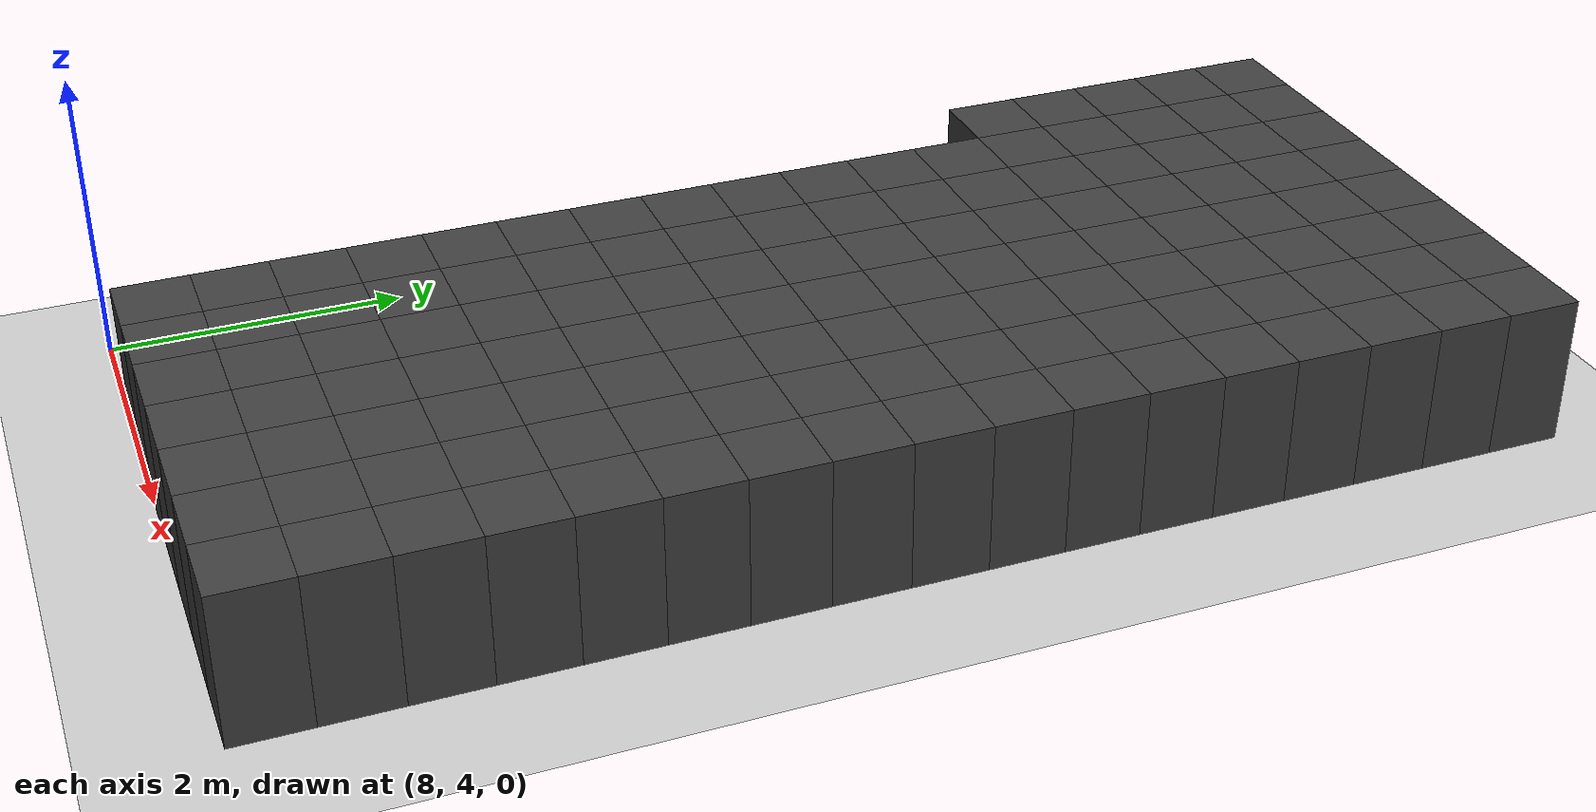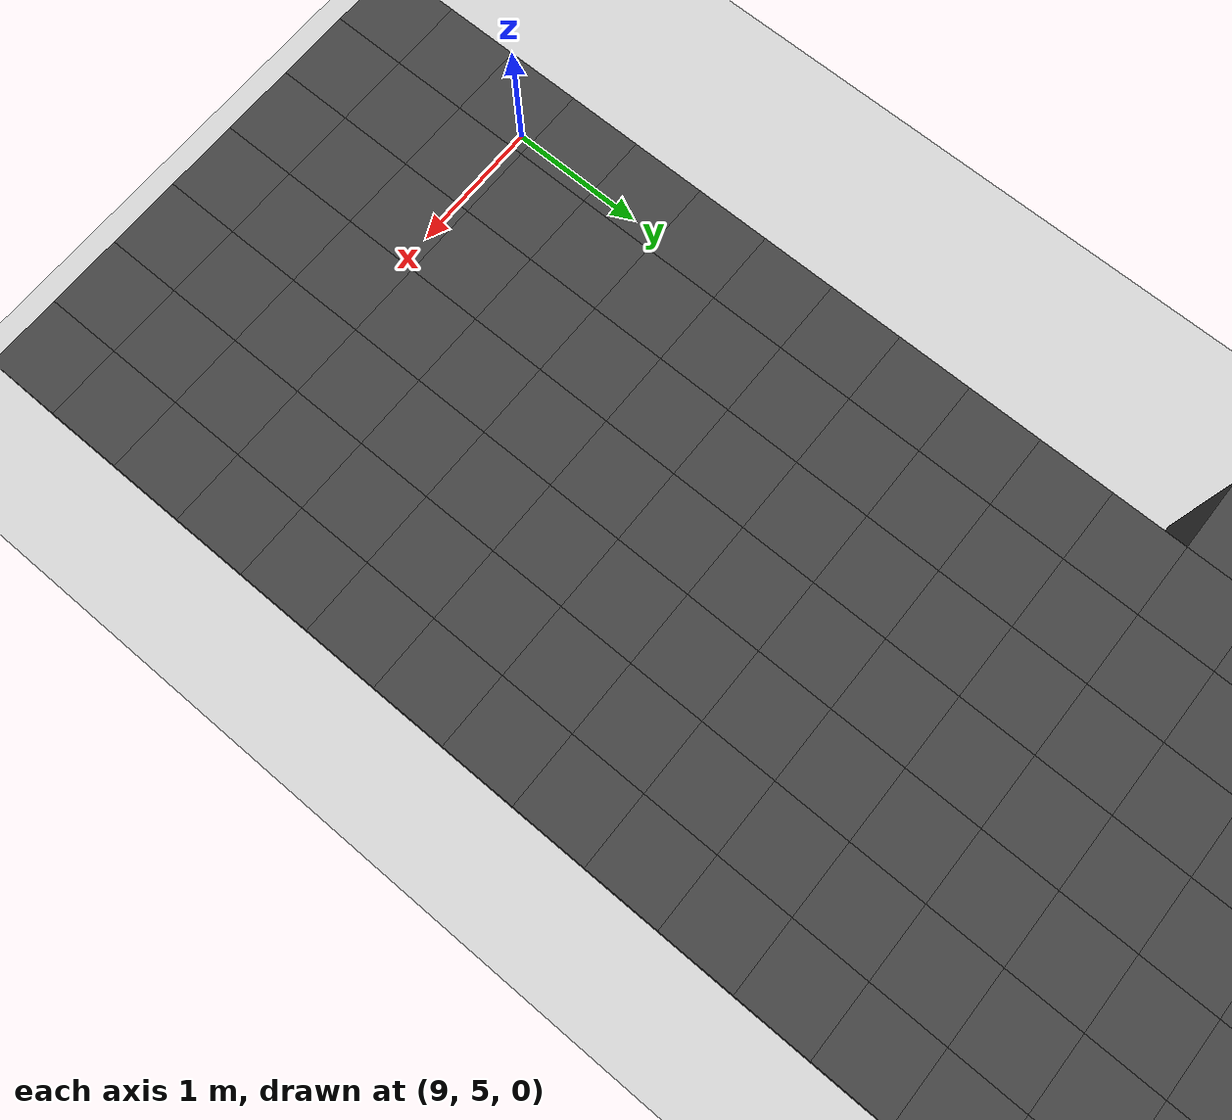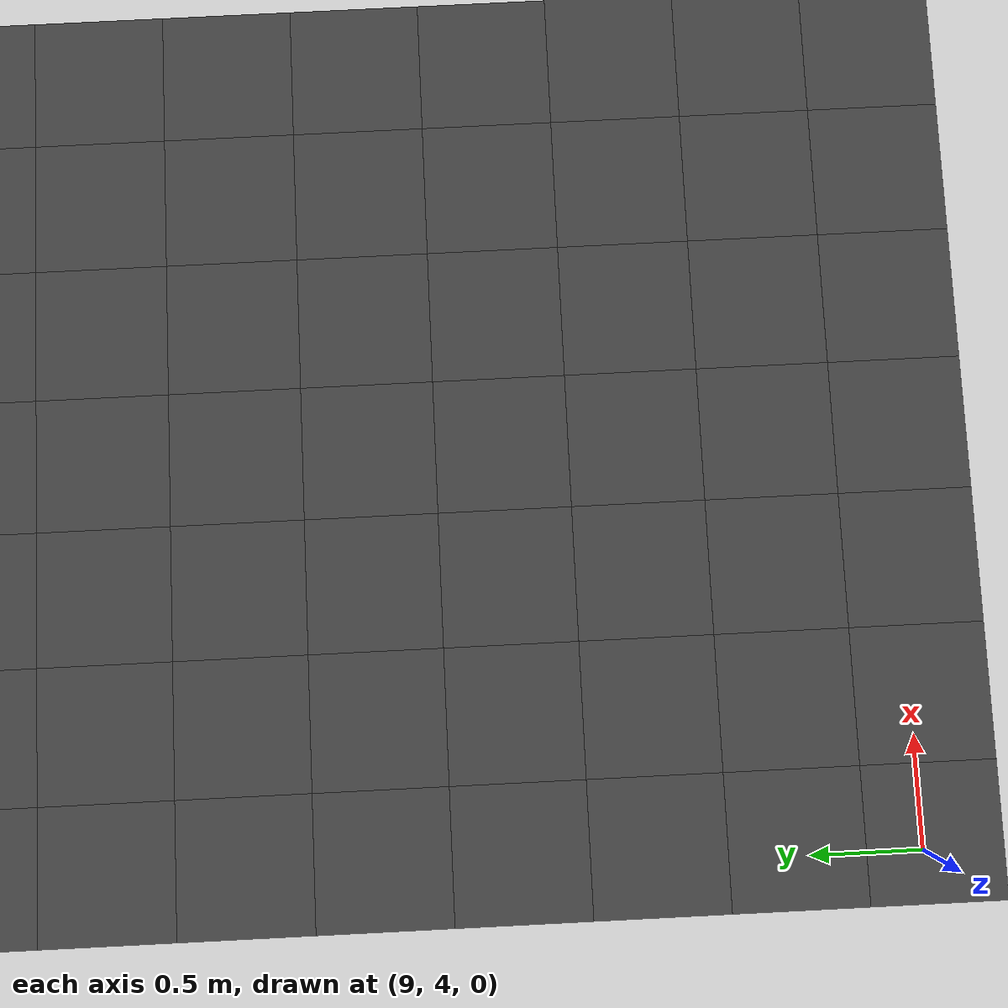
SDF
<sdf version="1.7">
 <world name="map_10726">
  <model name="ground_plane">
   <static>true</static>
   <link name="link">
    <collision name="collision">
     <geometry><plane><normal>0 0 1</normal><size>200 200</size></plane></geometry>
    </collision>
    <visual name="visual">
     <geometry><plane><normal>0 0 1</normal><size>200 200</size></plane></geometry>
     <material><ambient>0.8 0.8 0.8 1</ambient><diffuse>0.8 0.8 0.8 1</diffuse></material>
    </visual>
   </link>
  </model>
  <model name="maze_environment">
   <static>true</static>
   <link name="wall_42">
    <pose>8.750 12.250 0.500 0 0 0</pose>
    <collision name="col"><geometry><box><size>0.5 0.5 1.0</size></box></geometry></collision>
    <visual name="vis">
     <geometry><box><size>0.5 0.5 1.0</size></box></geometry>
     <material><ambient>0.15 0.15 0.15 1</ambient><diffuse>0.25 0.25 0.25 1</diffuse></material>
    </visual>
   </link>
   <link name="wall_43">
    <pose>9.250 12.250 0.500 0 0 0</pose>
    <collision name="col"><geometry><box><size>0.5 0.5 1.0</size></box></geometry></collision>
    <visual name="vis">
     <geometry><box><size>0.5 0.5 1.0</size></box></geometry>
     <material><ambient>0.15 0.15 0.15 1</ambient><diffuse>0.25 0.25 0.25 1</diffuse></material>
    </visual>
   </link>
   <link name="wall_44">
    <pose>9.750 12.250 0.500 0 0 0</pose>
    <collision name="col"><geometry><box><size>0.5 0.5 1.0</size></box></geometry></collision>
    <visual name="vis">
     <geometry><box><size>0.5 0.5 1.0</size></box></geometry>
     <material><ambient>0.15 0.15 0.15 1</ambient><diffuse>0.25 0.25 0.25 1</diffuse></material>
    </visual>
   </link>
   <link name="wall_45">
    <pose>10.250 12.250 0.500 0 0 0</pose>
    <collision name="col"><geometry><box><size>0.5 0.5 1.0</size></box></geometry></collision>
    <visual name="vis">
     <geometry><box><size>0.5 0.5 1.0</size></box></geometry>
     <material><ambient>0.15 0.15 0.15 1</ambient><diffuse>0.25 0.25 0.25 1</diffuse></material>
    </visual>
   </link>
   <link name="wall_46">
    <pose>10.750 12.250 0.500 0 0 0</pose>
    <collision name="col"><geometry><box><size>0.5 0.5 1.0</size></box></geometry></collision>
    <visual name="vis">
     <geometry><box><size>0.5 0.5 1.0</size></box></geometry>
     <material><ambient>0.15 0.15 0.15 1</ambient><diffuse>0.25 0.25 0.25 1</diffuse></material>
    </visual>
   </link>
   <link name="wall_47">
    <pose>11.250 12.250 0.500 0 0 0</pose>
    <collision name="col"><geometry><box><size>0.5 0.5 1.0</size></box></geometry></collision>
    <visual name="vis">
     <geometry><box><size>0.5 0.5 1.0</size></box></geometry>
     <material><ambient>0.15 0.15 0.15 1</ambient><diffuse>0.25 0.25 0.25 1</diffuse></material>
    </visual>
   </link>
   <link name="wall_48">
    <pose>11.750 12.250 0.500 0 0 0</pose>
    <collision name="col"><geometry><box><size>0.5 0.5 1.0</size></box></geometry></collision>
    <visual name="vis">
     <geometry><box><size>0.5 0.5 1.0</size></box></geometry>
     <material><ambient>0.15 0.15 0.15 1</ambient><diffuse>0.25 0.25 0.25 1</diffuse></material>
    </visual>
   </link>
   <link name="wall_49">
    <pose>12.250 12.250 0.500 0 0 0</pose>
    <collision name="col"><geometry><box><size>0.5 0.5 1.0</size></box></geometry></collision>
    <visual name="vis">
     <geometry><box><size>0.5 0.5 1.0</size></box></geometry>
     <material><ambient>0.15 0.15 0.15 1</ambient><diffuse>0.25 0.25 0.25 1</diffuse></material>
    </visual>
   </link>
   <link name="wall_89">
    <pose>8.750 11.750 0.500 0 0 0</pose>
    <collision name="col"><geometry><box><size>0.5 0.5 1.0</size></box></geometry></collision>
    <visual name="vis">
     <geometry><box><size>0.5 0.5 1.0</size></box></geometry>
     <material><ambient>0.15 0.15 0.15 1</ambient><diffuse>0.25 0.25 0.25 1</diffuse></material>
    </visual>
   </link>
   <link name="wall_90">
    <pose>9.250 11.750 0.500 0 0 0</pose>
    <collision name="col"><geometry><box><size>0.5 0.5 1.0</size></box></geometry></collision>
    <visual name="vis">
     <geometry><box><size>0.5 0.5 1.0</size></box></geometry>
     <material><ambient>0.15 0.15 0.15 1</ambient><diffuse>0.25 0.25 0.25 1</diffuse></material>
    </visual>
   </link>
   <link name="wall_91">
    <pose>9.750 11.750 0.500 0 0 0</pose>
    <collision name="col"><geometry><box><size>0.5 0.5 1.0</size></box></geometry></collision>
    <visual name="vis">
     <geometry><box><size>0.5 0.5 1.0</size></box></geometry>
     <material><ambient>0.15 0.15 0.15 1</ambient><diffuse>0.25 0.25 0.25 1</diffuse></material>
    </visual>
   </link>
   <link name="wall_92">
    <pose>10.250 11.750 0.500 0 0 0</pose>
    <collision name="col"><geometry><box><size>0.5 0.5 1.0</size></box></geometry></collision>
    <visual name="vis">
     <geometry><box><size>0.5 0.5 1.0</size></box></geometry>
     <material><ambient>0.15 0.15 0.15 1</ambient><diffuse>0.25 0.25 0.25 1</diffuse></material>
    </visual>
   </link>
   <link name="wall_93">
    <pose>10.750 11.750 0.500 0 0 0</pose>
    <collision name="col"><geometry><box><size>0.5 0.5 1.0</size></box></geometry></collision>
    <visual name="vis">
     <geometry><box><size>0.5 0.5 1.0</size></box></geometry>
     <material><ambient>0.15 0.15 0.15 1</ambient><diffuse>0.25 0.25 0.25 1</diffuse></material>
    </visual>
   </link>
   <link name="wall_94">
    <pose>11.250 11.750 0.500 0 0 0</pose>
    <collision name="col"><geometry><box><size>0.5 0.5 1.0</size></box></geometry></collision>
    <visual name="vis">
     <geometry><box><size>0.5 0.5 1.0</size></box></geometry>
     <material><ambient>0.15 0.15 0.15 1</ambient><diffuse>0.25 0.25 0.25 1</diffuse></material>
    </visual>
   </link>
   <link name="wall_95">
    <pose>11.750 11.750 0.500 0 0 0</pose>
    <collision name="col"><geometry><box><size>0.5 0.5 1.0</size></box></geometry></collision>
    <visual name="vis">
     <geometry><box><size>0.5 0.5 1.0</size></box></geometry>
     <material><ambient>0.15 0.15 0.15 1</ambient><diffuse>0.25 0.25 0.25 1</diffuse></material>
    </visual>
   </link>
   <link name="wall_96">
    <pose>12.250 11.750 0.500 0 0 0</pose>
    <collision name="col"><geometry><box><size>0.5 0.5 1.0</size></box></geometry></collision>
    <visual name="vis">
     <geometry><box><size>0.5 0.5 1.0</size></box></geometry>
     <material><ambient>0.15 0.15 0.15 1</ambient><diffuse>0.25 0.25 0.25 1</diffuse></material>
    </visual>
   </link>
   <link name="wall_136">
    <pose>8.750 11.250 0.500 0 0 0</pose>
    <collision name="col"><geometry><box><size>0.5 0.5 1.0</size></box></geometry></collision>
    <visual name="vis">
     <geometry><box><size>0.5 0.5 1.0</size></box></geometry>
     <material><ambient>0.15 0.15 0.15 1</ambient><diffuse>0.25 0.25 0.25 1</diffuse></material>
    </visual>
   </link>
   <link name="wall_137">
    <pose>9.250 11.250 0.500 0 0 0</pose>
    <collision name="col"><geometry><box><size>0.5 0.5 1.0</size></box></geometry></collision>
    <visual name="vis">
     <geometry><box><size>0.5 0.5 1.0</size></box></geometry>
     <material><ambient>0.15 0.15 0.15 1</ambient><diffuse>0.25 0.25 0.25 1</diffuse></material>
    </visual>
   </link>
   <link name="wall_138">
    <pose>9.750 11.250 0.500 0 0 0</pose>
    <collision name="col"><geometry><box><size>0.5 0.5 1.0</size></box></geometry></collision>
    <visual name="vis">
     <geometry><box><size>0.5 0.5 1.0</size></box></geometry>
     <material><ambient>0.15 0.15 0.15 1</ambient><diffuse>0.25 0.25 0.25 1</diffuse></material>
    </visual>
   </link>
   <link name="wall_139">
    <pose>10.250 11.250 0.500 0 0 0</pose>
    <collision name="col"><geometry><box><size>0.5 0.5 1.0</size></box></geometry></collision>
    <visual name="vis">
     <geometry><box><size>0.5 0.5 1.0</size></box></geometry>
     <material><ambient>0.15 0.15 0.15 1</ambient><diffuse>0.25 0.25 0.25 1</diffuse></material>
    </visual>
   </link>
   <link name="wall_140">
    <pose>10.750 11.250 0.500 0 0 0</pose>
    <collision name="col"><geometry><box><size>0.5 0.5 1.0</size></box></geometry></collision>
    <visual name="vis">
     <geometry><box><size>0.5 0.5 1.0</size></box></geometry>
     <material><ambient>0.15 0.15 0.15 1</ambient><diffuse>0.25 0.25 0.25 1</diffuse></material>
    </visual>
   </link>
   <link name="wall_141">
    <pose>11.250 11.250 0.500 0 0 0</pose>
    <collision name="col"><geometry><box><size>0.5 0.5 1.0</size></box></geometry></collision>
    <visual name="vis">
     <geometry><box><size>0.5 0.5 1.0</size></box></geometry>
     <material><ambient>0.15 0.15 0.15 1</ambient><diffuse>0.25 0.25 0.25 1</diffuse></material>
    </visual>
   </link>
   <link name="wall_142">
    <pose>11.750 11.250 0.500 0 0 0</pose>
    <collision name="col"><geometry><box><size>0.5 0.5 1.0</size></box></geometry></collision>
    <visual name="vis">
     <geometry><box><size>0.5 0.5 1.0</size></box></geometry>
     <material><ambient>0.15 0.15 0.15 1</ambient><diffuse>0.25 0.25 0.25 1</diffuse></material>
    </visual>
   </link>
   <link name="wall_143">
    <pose>12.250 11.250 0.500 0 0 0</pose>
    <collision name="col"><geometry><box><size>0.5 0.5 1.0</size></box></geometry></collision>
    <visual name="vis">
     <geometry><box><size>0.5 0.5 1.0</size></box></geometry>
     <material><ambient>0.15 0.15 0.15 1</ambient><diffuse>0.25 0.25 0.25 1</diffuse></material>
    </visual>
   </link>
   <link name="wall_183">
    <pose>8.750 10.750 0.500 0 0 0</pose>
    <collision name="col"><geometry><box><size>0.5 0.5 1.0</size></box></geometry></collision>
    <visual name="vis">
     <geometry><box><size>0.5 0.5 1.0</size></box></geometry>
     <material><ambient>0.15 0.15 0.15 1</ambient><diffuse>0.25 0.25 0.25 1</diffuse></material>
    </visual>
   </link>
   <link name="wall_184">
    <pose>9.250 10.750 0.500 0 0 0</pose>
    <collision name="col"><geometry><box><size>0.5 0.5 1.0</size></box></geometry></collision>
    <visual name="vis">
     <geometry><box><size>0.5 0.5 1.0</size></box></geometry>
     <material><ambient>0.15 0.15 0.15 1</ambient><diffuse>0.25 0.25 0.25 1</diffuse></material>
    </visual>
   </link>
   <link name="wall_185">
    <pose>9.750 10.750 0.500 0 0 0</pose>
    <collision name="col"><geometry><box><size>0.5 0.5 1.0</size></box></geometry></collision>
    <visual name="vis">
     <geometry><box><size>0.5 0.5 1.0</size></box></geometry>
     <material><ambient>0.15 0.15 0.15 1</ambient><diffuse>0.25 0.25 0.25 1</diffuse></material>
    </visual>
   </link>
   <link name="wall_186">
    <pose>10.250 10.750 0.500 0 0 0</pose>
    <collision name="col"><geometry><box><size>0.5 0.5 1.0</size></box></geometry></collision>
    <visual name="vis">
     <geometry><box><size>0.5 0.5 1.0</size></box></geometry>
     <material><ambient>0.15 0.15 0.15 1</ambient><diffuse>0.25 0.25 0.25 1</diffuse></material>
    </visual>
   </link>
   <link name="wall_187">
    <pose>10.750 10.750 0.500 0 0 0</pose>
    <collision name="col"><geometry><box><size>0.5 0.5 1.0</size></box></geometry></collision>
    <visual name="vis">
     <geometry><box><size>0.5 0.5 1.0</size></box></geometry>
     <material><ambient>0.15 0.15 0.15 1</ambient><diffuse>0.25 0.25 0.25 1</diffuse></material>
    </visual>
   </link>
   <link name="wall_188">
    <pose>11.250 10.750 0.500 0 0 0</pose>
    <collision name="col"><geometry><box><size>0.5 0.5 1.0</size></box></geometry></collision>
    <visual name="vis">
     <geometry><box><size>0.5 0.5 1.0</size></box></geometry>
     <material><ambient>0.15 0.15 0.15 1</ambient><diffuse>0.25 0.25 0.25 1</diffuse></material>
    </visual>
   </link>
   <link name="wall_189">
    <pose>11.750 10.750 0.500 0 0 0</pose>
    <collision name="col"><geometry><box><size>0.5 0.5 1.0</size></box></geometry></collision>
    <visual name="vis">
     <geometry><box><size>0.5 0.5 1.0</size></box></geometry>
     <material><ambient>0.15 0.15 0.15 1</ambient><diffuse>0.25 0.25 0.25 1</diffuse></material>
    </visual>
   </link>
   <link name="wall_190">
    <pose>12.250 10.750 0.500 0 0 0</pose>
    <collision name="col"><geometry><box><size>0.5 0.5 1.0</size></box></geometry></collision>
    <visual name="vis">
     <geometry><box><size>0.5 0.5 1.0</size></box></geometry>
     <material><ambient>0.15 0.15 0.15 1</ambient><diffuse>0.25 0.25 0.25 1</diffuse></material>
    </visual>
   </link>
   <link name="wall_232">
    <pose>8.750 10.250 0.500 0 0 0</pose>
    <collision name="col"><geometry><box><size>0.5 0.5 1.0</size></box></geometry></collision>
    <visual name="vis">
     <geometry><box><size>0.5 0.5 1.0</size></box></geometry>
     <material><ambient>0.15 0.15 0.15 1</ambient><diffuse>0.25 0.25 0.25 1</diffuse></material>
    </visual>
   </link>
   <link name="wall_233">
    <pose>9.250 10.250 0.500 0 0 0</pose>
    <collision name="col"><geometry><box><size>0.5 0.5 1.0</size></box></geometry></collision>
    <visual name="vis">
     <geometry><box><size>0.5 0.5 1.0</size></box></geometry>
     <material><ambient>0.15 0.15 0.15 1</ambient><diffuse>0.25 0.25 0.25 1</diffuse></material>
    </visual>
   </link>
   <link name="wall_234">
    <pose>9.750 10.250 0.500 0 0 0</pose>
    <collision name="col"><geometry><box><size>0.5 0.5 1.0</size></box></geometry></collision>
    <visual name="vis">
     <geometry><box><size>0.5 0.5 1.0</size></box></geometry>
     <material><ambient>0.15 0.15 0.15 1</ambient><diffuse>0.25 0.25 0.25 1</diffuse></material>
    </visual>
   </link>
   <link name="wall_235">
    <pose>10.250 10.250 0.500 0 0 0</pose>
    <collision name="col"><geometry><box><size>0.5 0.5 1.0</size></box></geometry></collision>
    <visual name="vis">
     <geometry><box><size>0.5 0.5 1.0</size></box></geometry>
     <material><ambient>0.15 0.15 0.15 1</ambient><diffuse>0.25 0.25 0.25 1</diffuse></material>
    </visual>
   </link>
   <link name="wall_236">
    <pose>10.750 10.250 0.500 0 0 0</pose>
    <collision name="col"><geometry><box><size>0.5 0.5 1.0</size></box></geometry></collision>
    <visual name="vis">
     <geometry><box><size>0.5 0.5 1.0</size></box></geometry>
     <material><ambient>0.15 0.15 0.15 1</ambient><diffuse>0.25 0.25 0.25 1</diffuse></material>
    </visual>
   </link>
   <link name="wall_237">
    <pose>11.250 10.250 0.500 0 0 0</pose>
    <collision name="col"><geometry><box><size>0.5 0.5 1.0</size></box></geometry></collision>
    <visual name="vis">
     <geometry><box><size>0.5 0.5 1.0</size></box></geometry>
     <material><ambient>0.15 0.15 0.15 1</ambient><diffuse>0.25 0.25 0.25 1</diffuse></material>
    </visual>
   </link>
   <link name="wall_238">
    <pose>11.750 10.250 0.500 0 0 0</pose>
    <collision name="col"><geometry><box><size>0.5 0.5 1.0</size></box></geometry></collision>
    <visual name="vis">
     <geometry><box><size>0.5 0.5 1.0</size></box></geometry>
     <material><ambient>0.15 0.15 0.15 1</ambient><diffuse>0.25 0.25 0.25 1</diffuse></material>
    </visual>
   </link>
   <link name="wall_239">
    <pose>12.250 10.250 0.500 0 0 0</pose>
    <collision name="col"><geometry><box><size>0.5 0.5 1.0</size></box></geometry></collision>
    <visual name="vis">
     <geometry><box><size>0.5 0.5 1.0</size></box></geometry>
     <material><ambient>0.15 0.15 0.15 1</ambient><diffuse>0.25 0.25 0.25 1</diffuse></material>
    </visual>
   </link>
   <link name="wall_282">
    <pose>9.250 9.750 0.500 0 0 0</pose>
    <collision name="col"><geometry><box><size>0.5 0.5 1.0</size></box></geometry></collision>
    <visual name="vis">
     <geometry><box><size>0.5 0.5 1.0</size></box></geometry>
     <material><ambient>0.15 0.15 0.15 1</ambient><diffuse>0.25 0.25 0.25 1</diffuse></material>
    </visual>
   </link>
   <link name="wall_283">
    <pose>9.750 9.750 0.500 0 0 0</pose>
    <collision name="col"><geometry><box><size>0.5 0.5 1.0</size></box></geometry></collision>
    <visual name="vis">
     <geometry><box><size>0.5 0.5 1.0</size></box></geometry>
     <material><ambient>0.15 0.15 0.15 1</ambient><diffuse>0.25 0.25 0.25 1</diffuse></material>
    </visual>
   </link>
   <link name="wall_284">
    <pose>10.250 9.750 0.500 0 0 0</pose>
    <collision name="col"><geometry><box><size>0.5 0.5 1.0</size></box></geometry></collision>
    <visual name="vis">
     <geometry><box><size>0.5 0.5 1.0</size></box></geometry>
     <material><ambient>0.15 0.15 0.15 1</ambient><diffuse>0.25 0.25 0.25 1</diffuse></material>
    </visual>
   </link>
   <link name="wall_285">
    <pose>10.750 9.750 0.500 0 0 0</pose>
    <collision name="col"><geometry><box><size>0.5 0.5 1.0</size></box></geometry></collision>
    <visual name="vis">
     <geometry><box><size>0.5 0.5 1.0</size></box></geometry>
     <material><ambient>0.15 0.15 0.15 1</ambient><diffuse>0.25 0.25 0.25 1</diffuse></material>
    </visual>
   </link>
   <link name="wall_286">
    <pose>11.250 9.750 0.500 0 0 0</pose>
    <collision name="col"><geometry><box><size>0.5 0.5 1.0</size></box></geometry></collision>
    <visual name="vis">
     <geometry><box><size>0.5 0.5 1.0</size></box></geometry>
     <material><ambient>0.15 0.15 0.15 1</ambient><diffuse>0.25 0.25 0.25 1</diffuse></material>
    </visual>
   </link>
   <link name="wall_287">
    <pose>11.750 9.750 0.500 0 0 0</pose>
    <collision name="col"><geometry><box><size>0.5 0.5 1.0</size></box></geometry></collision>
    <visual name="vis">
     <geometry><box><size>0.5 0.5 1.0</size></box></geometry>
     <material><ambient>0.15 0.15 0.15 1</ambient><diffuse>0.25 0.25 0.25 1</diffuse></material>
    </visual>
   </link>
   <link name="wall_288">
    <pose>12.250 9.750 0.500 0 0 0</pose>
    <collision name="col"><geometry><box><size>0.5 0.5 1.0</size></box></geometry></collision>
    <visual name="vis">
     <geometry><box><size>0.5 0.5 1.0</size></box></geometry>
     <material><ambient>0.15 0.15 0.15 1</ambient><diffuse>0.25 0.25 0.25 1</diffuse></material>
    </visual>
   </link>
   <link name="wall_331">
    <pose>9.250 9.250 0.500 0 0 0</pose>
    <collision name="col"><geometry><box><size>0.5 0.5 1.0</size></box></geometry></collision>
    <visual name="vis">
     <geometry><box><size>0.5 0.5 1.0</size></box></geometry>
     <material><ambient>0.15 0.15 0.15 1</ambient><diffuse>0.25 0.25 0.25 1</diffuse></material>
    </visual>
   </link>
   <link name="wall_332">
    <pose>9.750 9.250 0.500 0 0 0</pose>
    <collision name="col"><geometry><box><size>0.5 0.5 1.0</size></box></geometry></collision>
    <visual name="vis">
     <geometry><box><size>0.5 0.5 1.0</size></box></geometry>
     <material><ambient>0.15 0.15 0.15 1</ambient><diffuse>0.25 0.25 0.25 1</diffuse></material>
    </visual>
   </link>
   <link name="wall_333">
    <pose>10.250 9.250 0.500 0 0 0</pose>
    <collision name="col"><geometry><box><size>0.5 0.5 1.0</size></box></geometry></collision>
    <visual name="vis">
     <geometry><box><size>0.5 0.5 1.0</size></box></geometry>
     <material><ambient>0.15 0.15 0.15 1</ambient><diffuse>0.25 0.25 0.25 1</diffuse></material>
    </visual>
   </link>
   <link name="wall_334">
    <pose>10.750 9.250 0.500 0 0 0</pose>
    <collision name="col"><geometry><box><size>0.5 0.5 1.0</size></box></geometry></collision>
    <visual name="vis">
     <geometry><box><size>0.5 0.5 1.0</size></box></geometry>
     <material><ambient>0.15 0.15 0.15 1</ambient><diffuse>0.25 0.25 0.25 1</diffuse></material>
    </visual>
   </link>
   <link name="wall_335">
    <pose>11.250 9.250 0.500 0 0 0</pose>
    <collision name="col"><geometry><box><size>0.5 0.5 1.0</size></box></geometry></collision>
    <visual name="vis">
     <geometry><box><size>0.5 0.5 1.0</size></box></geometry>
     <material><ambient>0.15 0.15 0.15 1</ambient><diffuse>0.25 0.25 0.25 1</diffuse></material>
    </visual>
   </link>
   <link name="wall_336">
    <pose>11.750 9.250 0.500 0 0 0</pose>
    <collision name="col"><geometry><box><size>0.5 0.5 1.0</size></box></geometry></collision>
    <visual name="vis">
     <geometry><box><size>0.5 0.5 1.0</size></box></geometry>
     <material><ambient>0.15 0.15 0.15 1</ambient><diffuse>0.25 0.25 0.25 1</diffuse></material>
    </visual>
   </link>
   <link name="wall_337">
    <pose>12.250 9.250 0.500 0 0 0</pose>
    <collision name="col"><geometry><box><size>0.5 0.5 1.0</size></box></geometry></collision>
    <visual name="vis">
     <geometry><box><size>0.5 0.5 1.0</size></box></geometry>
     <material><ambient>0.15 0.15 0.15 1</ambient><diffuse>0.25 0.25 0.25 1</diffuse></material>
    </visual>
   </link>
   <link name="wall_372">
    <pose>9.250 8.750 0.500 0 0 0</pose>
    <collision name="col"><geometry><box><size>0.5 0.5 1.0</size></box></geometry></collision>
    <visual name="vis">
     <geometry><box><size>0.5 0.5 1.0</size></box></geometry>
     <material><ambient>0.15 0.15 0.15 1</ambient><diffuse>0.25 0.25 0.25 1</diffuse></material>
    </visual>
   </link>
   <link name="wall_373">
    <pose>9.750 8.750 0.500 0 0 0</pose>
    <collision name="col"><geometry><box><size>0.5 0.5 1.0</size></box></geometry></collision>
    <visual name="vis">
     <geometry><box><size>0.5 0.5 1.0</size></box></geometry>
     <material><ambient>0.15 0.15 0.15 1</ambient><diffuse>0.25 0.25 0.25 1</diffuse></material>
    </visual>
   </link>
   <link name="wall_374">
    <pose>10.250 8.750 0.500 0 0 0</pose>
    <collision name="col"><geometry><box><size>0.5 0.5 1.0</size></box></geometry></collision>
    <visual name="vis">
     <geometry><box><size>0.5 0.5 1.0</size></box></geometry>
     <material><ambient>0.15 0.15 0.15 1</ambient><diffuse>0.25 0.25 0.25 1</diffuse></material>
    </visual>
   </link>
   <link name="wall_375">
    <pose>10.750 8.750 0.500 0 0 0</pose>
    <collision name="col"><geometry><box><size>0.5 0.5 1.0</size></box></geometry></collision>
    <visual name="vis">
     <geometry><box><size>0.5 0.5 1.0</size></box></geometry>
     <material><ambient>0.15 0.15 0.15 1</ambient><diffuse>0.25 0.25 0.25 1</diffuse></material>
    </visual>
   </link>
   <link name="wall_376">
    <pose>11.250 8.750 0.500 0 0 0</pose>
    <collision name="col"><geometry><box><size>0.5 0.5 1.0</size></box></geometry></collision>
    <visual name="vis">
     <geometry><box><size>0.5 0.5 1.0</size></box></geometry>
     <material><ambient>0.15 0.15 0.15 1</ambient><diffuse>0.25 0.25 0.25 1</diffuse></material>
    </visual>
   </link>
   <link name="wall_377">
    <pose>11.750 8.750 0.500 0 0 0</pose>
    <collision name="col"><geometry><box><size>0.5 0.5 1.0</size></box></geometry></collision>
    <visual name="vis">
     <geometry><box><size>0.5 0.5 1.0</size></box></geometry>
     <material><ambient>0.15 0.15 0.15 1</ambient><diffuse>0.25 0.25 0.25 1</diffuse></material>
    </visual>
   </link>
   <link name="wall_378">
    <pose>12.250 8.750 0.500 0 0 0</pose>
    <collision name="col"><geometry><box><size>0.5 0.5 1.0</size></box></geometry></collision>
    <visual name="vis">
     <geometry><box><size>0.5 0.5 1.0</size></box></geometry>
     <material><ambient>0.15 0.15 0.15 1</ambient><diffuse>0.25 0.25 0.25 1</diffuse></material>
    </visual>
   </link>
   <link name="wall_413">
    <pose>9.250 8.250 0.500 0 0 0</pose>
    <collision name="col"><geometry><box><size>0.5 0.5 1.0</size></box></geometry></collision>
    <visual name="vis">
     <geometry><box><size>0.5 0.5 1.0</size></box></geometry>
     <material><ambient>0.15 0.15 0.15 1</ambient><diffuse>0.25 0.25 0.25 1</diffuse></material>
    </visual>
   </link>
   <link name="wall_414">
    <pose>9.750 8.250 0.500 0 0 0</pose>
    <collision name="col"><geometry><box><size>0.5 0.5 1.0</size></box></geometry></collision>
    <visual name="vis">
     <geometry><box><size>0.5 0.5 1.0</size></box></geometry>
     <material><ambient>0.15 0.15 0.15 1</ambient><diffuse>0.25 0.25 0.25 1</diffuse></material>
    </visual>
   </link>
   <link name="wall_415">
    <pose>10.250 8.250 0.500 0 0 0</pose>
    <collision name="col"><geometry><box><size>0.5 0.5 1.0</size></box></geometry></collision>
    <visual name="vis">
     <geometry><box><size>0.5 0.5 1.0</size></box></geometry>
     <material><ambient>0.15 0.15 0.15 1</ambient><diffuse>0.25 0.25 0.25 1</diffuse></material>
    </visual>
   </link>
   <link name="wall_416">
    <pose>10.750 8.250 0.500 0 0 0</pose>
    <collision name="col"><geometry><box><size>0.5 0.5 1.0</size></box></geometry></collision>
    <visual name="vis">
     <geometry><box><size>0.5 0.5 1.0</size></box></geometry>
     <material><ambient>0.15 0.15 0.15 1</ambient><diffuse>0.25 0.25 0.25 1</diffuse></material>
    </visual>
   </link>
   <link name="wall_417">
    <pose>11.250 8.250 0.500 0 0 0</pose>
    <collision name="col"><geometry><box><size>0.5 0.5 1.0</size></box></geometry></collision>
    <visual name="vis">
     <geometry><box><size>0.5 0.5 1.0</size></box></geometry>
     <material><ambient>0.15 0.15 0.15 1</ambient><diffuse>0.25 0.25 0.25 1</diffuse></material>
    </visual>
   </link>
   <link name="wall_418">
    <pose>11.750 8.250 0.500 0 0 0</pose>
    <collision name="col"><geometry><box><size>0.5 0.5 1.0</size></box></geometry></collision>
    <visual name="vis">
     <geometry><box><size>0.5 0.5 1.0</size></box></geometry>
     <material><ambient>0.15 0.15 0.15 1</ambient><diffuse>0.25 0.25 0.25 1</diffuse></material>
    </visual>
   </link>
   <link name="wall_419">
    <pose>12.250 8.250 0.500 0 0 0</pose>
    <collision name="col"><geometry><box><size>0.5 0.5 1.0</size></box></geometry></collision>
    <visual name="vis">
     <geometry><box><size>0.5 0.5 1.0</size></box></geometry>
     <material><ambient>0.15 0.15 0.15 1</ambient><diffuse>0.25 0.25 0.25 1</diffuse></material>
    </visual>
   </link>
   <link name="wall_454">
    <pose>9.250 7.750 0.500 0 0 0</pose>
    <collision name="col"><geometry><box><size>0.5 0.5 1.0</size></box></geometry></collision>
    <visual name="vis">
     <geometry><box><size>0.5 0.5 1.0</size></box></geometry>
     <material><ambient>0.15 0.15 0.15 1</ambient><diffuse>0.25 0.25 0.25 1</diffuse></material>
    </visual>
   </link>
   <link name="wall_455">
    <pose>9.750 7.750 0.500 0 0 0</pose>
    <collision name="col"><geometry><box><size>0.5 0.5 1.0</size></box></geometry></collision>
    <visual name="vis">
     <geometry><box><size>0.5 0.5 1.0</size></box></geometry>
     <material><ambient>0.15 0.15 0.15 1</ambient><diffuse>0.25 0.25 0.25 1</diffuse></material>
    </visual>
   </link>
   <link name="wall_456">
    <pose>10.250 7.750 0.500 0 0 0</pose>
    <collision name="col"><geometry><box><size>0.5 0.5 1.0</size></box></geometry></collision>
    <visual name="vis">
     <geometry><box><size>0.5 0.5 1.0</size></box></geometry>
     <material><ambient>0.15 0.15 0.15 1</ambient><diffuse>0.25 0.25 0.25 1</diffuse></material>
    </visual>
   </link>
   <link name="wall_457">
    <pose>10.750 7.750 0.500 0 0 0</pose>
    <collision name="col"><geometry><box><size>0.5 0.5 1.0</size></box></geometry></collision>
    <visual name="vis">
     <geometry><box><size>0.5 0.5 1.0</size></box></geometry>
     <material><ambient>0.15 0.15 0.15 1</ambient><diffuse>0.25 0.25 0.25 1</diffuse></material>
    </visual>
   </link>
   <link name="wall_458">
    <pose>11.250 7.750 0.500 0 0 0</pose>
    <collision name="col"><geometry><box><size>0.5 0.5 1.0</size></box></geometry></collision>
    <visual name="vis">
     <geometry><box><size>0.5 0.5 1.0</size></box></geometry>
     <material><ambient>0.15 0.15 0.15 1</ambient><diffuse>0.25 0.25 0.25 1</diffuse></material>
    </visual>
   </link>
   <link name="wall_459">
    <pose>11.750 7.750 0.500 0 0 0</pose>
    <collision name="col"><geometry><box><size>0.5 0.5 1.0</size></box></geometry></collision>
    <visual name="vis">
     <geometry><box><size>0.5 0.5 1.0</size></box></geometry>
     <material><ambient>0.15 0.15 0.15 1</ambient><diffuse>0.25 0.25 0.25 1</diffuse></material>
    </visual>
   </link>
   <link name="wall_460">
    <pose>12.250 7.750 0.500 0 0 0</pose>
    <collision name="col"><geometry><box><size>0.5 0.5 1.0</size></box></geometry></collision>
    <visual name="vis">
     <geometry><box><size>0.5 0.5 1.0</size></box></geometry>
     <material><ambient>0.15 0.15 0.15 1</ambient><diffuse>0.25 0.25 0.25 1</diffuse></material>
    </visual>
   </link>
   <link name="wall_495">
    <pose>9.250 7.250 0.500 0 0 0</pose>
    <collision name="col"><geometry><box><size>0.5 0.5 1.0</size></box></geometry></collision>
    <visual name="vis">
     <geometry><box><size>0.5 0.5 1.0</size></box></geometry>
     <material><ambient>0.15 0.15 0.15 1</ambient><diffuse>0.25 0.25 0.25 1</diffuse></material>
    </visual>
   </link>
   <link name="wall_496">
    <pose>9.750 7.250 0.500 0 0 0</pose>
    <collision name="col"><geometry><box><size>0.5 0.5 1.0</size></box></geometry></collision>
    <visual name="vis">
     <geometry><box><size>0.5 0.5 1.0</size></box></geometry>
     <material><ambient>0.15 0.15 0.15 1</ambient><diffuse>0.25 0.25 0.25 1</diffuse></material>
    </visual>
   </link>
   <link name="wall_497">
    <pose>10.250 7.250 0.500 0 0 0</pose>
    <collision name="col"><geometry><box><size>0.5 0.5 1.0</size></box></geometry></collision>
    <visual name="vis">
     <geometry><box><size>0.5 0.5 1.0</size></box></geometry>
     <material><ambient>0.15 0.15 0.15 1</ambient><diffuse>0.25 0.25 0.25 1</diffuse></material>
    </visual>
   </link>
   <link name="wall_498">
    <pose>10.750 7.250 0.500 0 0 0</pose>
    <collision name="col"><geometry><box><size>0.5 0.5 1.0</size></box></geometry></collision>
    <visual name="vis">
     <geometry><box><size>0.5 0.5 1.0</size></box></geometry>
     <material><ambient>0.15 0.15 0.15 1</ambient><diffuse>0.25 0.25 0.25 1</diffuse></material>
    </visual>
   </link>
   <link name="wall_499">
    <pose>11.250 7.250 0.500 0 0 0</pose>
    <collision name="col"><geometry><box><size>0.5 0.5 1.0</size></box></geometry></collision>
    <visual name="vis">
     <geometry><box><size>0.5 0.5 1.0</size></box></geometry>
     <material><ambient>0.15 0.15 0.15 1</ambient><diffuse>0.25 0.25 0.25 1</diffuse></material>
    </visual>
   </link>
   <link name="wall_500">
    <pose>11.750 7.250 0.500 0 0 0</pose>
    <collision name="col"><geometry><box><size>0.5 0.5 1.0</size></box></geometry></collision>
    <visual name="vis">
     <geometry><box><size>0.5 0.5 1.0</size></box></geometry>
     <material><ambient>0.15 0.15 0.15 1</ambient><diffuse>0.25 0.25 0.25 1</diffuse></material>
    </visual>
   </link>
   <link name="wall_501">
    <pose>12.250 7.250 0.500 0 0 0</pose>
    <collision name="col"><geometry><box><size>0.5 0.5 1.0</size></box></geometry></collision>
    <visual name="vis">
     <geometry><box><size>0.5 0.5 1.0</size></box></geometry>
     <material><ambient>0.15 0.15 0.15 1</ambient><diffuse>0.25 0.25 0.25 1</diffuse></material>
    </visual>
   </link>
   <link name="wall_536">
    <pose>9.250 6.750 0.500 0 0 0</pose>
    <collision name="col"><geometry><box><size>0.5 0.5 1.0</size></box></geometry></collision>
    <visual name="vis">
     <geometry><box><size>0.5 0.5 1.0</size></box></geometry>
     <material><ambient>0.15 0.15 0.15 1</ambient><diffuse>0.25 0.25 0.25 1</diffuse></material>
    </visual>
   </link>
   <link name="wall_537">
    <pose>9.750 6.750 0.500 0 0 0</pose>
    <collision name="col"><geometry><box><size>0.5 0.5 1.0</size></box></geometry></collision>
    <visual name="vis">
     <geometry><box><size>0.5 0.5 1.0</size></box></geometry>
     <material><ambient>0.15 0.15 0.15 1</ambient><diffuse>0.25 0.25 0.25 1</diffuse></material>
    </visual>
   </link>
   <link name="wall_538">
    <pose>10.250 6.750 0.500 0 0 0</pose>
    <collision name="col"><geometry><box><size>0.5 0.5 1.0</size></box></geometry></collision>
    <visual name="vis">
     <geometry><box><size>0.5 0.5 1.0</size></box></geometry>
     <material><ambient>0.15 0.15 0.15 1</ambient><diffuse>0.25 0.25 0.25 1</diffuse></material>
    </visual>
   </link>
   <link name="wall_539">
    <pose>10.750 6.750 0.500 0 0 0</pose>
    <collision name="col"><geometry><box><size>0.5 0.5 1.0</size></box></geometry></collision>
    <visual name="vis">
     <geometry><box><size>0.5 0.5 1.0</size></box></geometry>
     <material><ambient>0.15 0.15 0.15 1</ambient><diffuse>0.25 0.25 0.25 1</diffuse></material>
    </visual>
   </link>
   <link name="wall_540">
    <pose>11.250 6.750 0.500 0 0 0</pose>
    <collision name="col"><geometry><box><size>0.5 0.5 1.0</size></box></geometry></collision>
    <visual name="vis">
     <geometry><box><size>0.5 0.5 1.0</size></box></geometry>
     <material><ambient>0.15 0.15 0.15 1</ambient><diffuse>0.25 0.25 0.25 1</diffuse></material>
    </visual>
   </link>
   <link name="wall_541">
    <pose>11.750 6.750 0.500 0 0 0</pose>
    <collision name="col"><geometry><box><size>0.5 0.5 1.0</size></box></geometry></collision>
    <visual name="vis">
     <geometry><box><size>0.5 0.5 1.0</size></box></geometry>
     <material><ambient>0.15 0.15 0.15 1</ambient><diffuse>0.25 0.25 0.25 1</diffuse></material>
    </visual>
   </link>
   <link name="wall_542">
    <pose>12.250 6.750 0.500 0 0 0</pose>
    <collision name="col"><geometry><box><size>0.5 0.5 1.0</size></box></geometry></collision>
    <visual name="vis">
     <geometry><box><size>0.5 0.5 1.0</size></box></geometry>
     <material><ambient>0.15 0.15 0.15 1</ambient><diffuse>0.25 0.25 0.25 1</diffuse></material>
    </visual>
   </link>
   <link name="wall_577">
    <pose>9.250 6.250 0.500 0 0 0</pose>
    <collision name="col"><geometry><box><size>0.5 0.5 1.0</size></box></geometry></collision>
    <visual name="vis">
     <geometry><box><size>0.5 0.5 1.0</size></box></geometry>
     <material><ambient>0.15 0.15 0.15 1</ambient><diffuse>0.25 0.25 0.25 1</diffuse></material>
    </visual>
   </link>
   <link name="wall_578">
    <pose>9.750 6.250 0.500 0 0 0</pose>
    <collision name="col"><geometry><box><size>0.5 0.5 1.0</size></box></geometry></collision>
    <visual name="vis">
     <geometry><box><size>0.5 0.5 1.0</size></box></geometry>
     <material><ambient>0.15 0.15 0.15 1</ambient><diffuse>0.25 0.25 0.25 1</diffuse></material>
    </visual>
   </link>
   <link name="wall_579">
    <pose>10.250 6.250 0.500 0 0 0</pose>
    <collision name="col"><geometry><box><size>0.5 0.5 1.0</size></box></geometry></collision>
    <visual name="vis">
     <geometry><box><size>0.5 0.5 1.0</size></box></geometry>
     <material><ambient>0.15 0.15 0.15 1</ambient><diffuse>0.25 0.25 0.25 1</diffuse></material>
    </visual>
   </link>
   <link name="wall_580">
    <pose>10.750 6.250 0.500 0 0 0</pose>
    <collision name="col"><geometry><box><size>0.5 0.5 1.0</size></box></geometry></collision>
    <visual name="vis">
     <geometry><box><size>0.5 0.5 1.0</size></box></geometry>
     <material><ambient>0.15 0.15 0.15 1</ambient><diffuse>0.25 0.25 0.25 1</diffuse></material>
    </visual>
   </link>
   <link name="wall_581">
    <pose>11.250 6.250 0.500 0 0 0</pose>
    <collision name="col"><geometry><box><size>0.5 0.5 1.0</size></box></geometry></collision>
    <visual name="vis">
     <geometry><box><size>0.5 0.5 1.0</size></box></geometry>
     <material><ambient>0.15 0.15 0.15 1</ambient><diffuse>0.25 0.25 0.25 1</diffuse></material>
    </visual>
   </link>
   <link name="wall_582">
    <pose>11.750 6.250 0.500 0 0 0</pose>
    <collision name="col"><geometry><box><size>0.5 0.5 1.0</size></box></geometry></collision>
    <visual name="vis">
     <geometry><box><size>0.5 0.5 1.0</size></box></geometry>
     <material><ambient>0.15 0.15 0.15 1</ambient><diffuse>0.25 0.25 0.25 1</diffuse></material>
    </visual>
   </link>
   <link name="wall_583">
    <pose>12.250 6.250 0.500 0 0 0</pose>
    <collision name="col"><geometry><box><size>0.5 0.5 1.0</size></box></geometry></collision>
    <visual name="vis">
     <geometry><box><size>0.5 0.5 1.0</size></box></geometry>
     <material><ambient>0.15 0.15 0.15 1</ambient><diffuse>0.25 0.25 0.25 1</diffuse></material>
    </visual>
   </link>
   <link name="wall_625">
    <pose>9.250 5.750 0.500 0 0 0</pose>
    <collision name="col"><geometry><box><size>0.5 0.5 1.0</size></box></geometry></collision>
    <visual name="vis">
     <geometry><box><size>0.5 0.5 1.0</size></box></geometry>
     <material><ambient>0.15 0.15 0.15 1</ambient><diffuse>0.25 0.25 0.25 1</diffuse></material>
    </visual>
   </link>
   <link name="wall_626">
    <pose>9.750 5.750 0.500 0 0 0</pose>
    <collision name="col"><geometry><box><size>0.5 0.5 1.0</size></box></geometry></collision>
    <visual name="vis">
     <geometry><box><size>0.5 0.5 1.0</size></box></geometry>
     <material><ambient>0.15 0.15 0.15 1</ambient><diffuse>0.25 0.25 0.25 1</diffuse></material>
    </visual>
   </link>
   <link name="wall_627">
    <pose>10.250 5.750 0.500 0 0 0</pose>
    <collision name="col"><geometry><box><size>0.5 0.5 1.0</size></box></geometry></collision>
    <visual name="vis">
     <geometry><box><size>0.5 0.5 1.0</size></box></geometry>
     <material><ambient>0.15 0.15 0.15 1</ambient><diffuse>0.25 0.25 0.25 1</diffuse></material>
    </visual>
   </link>
   <link name="wall_628">
    <pose>10.750 5.750 0.500 0 0 0</pose>
    <collision name="col"><geometry><box><size>0.5 0.5 1.0</size></box></geometry></collision>
    <visual name="vis">
     <geometry><box><size>0.5 0.5 1.0</size></box></geometry>
     <material><ambient>0.15 0.15 0.15 1</ambient><diffuse>0.25 0.25 0.25 1</diffuse></material>
    </visual>
   </link>
   <link name="wall_629">
    <pose>11.250 5.750 0.500 0 0 0</pose>
    <collision name="col"><geometry><box><size>0.5 0.5 1.0</size></box></geometry></collision>
    <visual name="vis">
     <geometry><box><size>0.5 0.5 1.0</size></box></geometry>
     <material><ambient>0.15 0.15 0.15 1</ambient><diffuse>0.25 0.25 0.25 1</diffuse></material>
    </visual>
   </link>
   <link name="wall_630">
    <pose>11.750 5.750 0.500 0 0 0</pose>
    <collision name="col"><geometry><box><size>0.5 0.5 1.0</size></box></geometry></collision>
    <visual name="vis">
     <geometry><box><size>0.5 0.5 1.0</size></box></geometry>
     <material><ambient>0.15 0.15 0.15 1</ambient><diffuse>0.25 0.25 0.25 1</diffuse></material>
    </visual>
   </link>
   <link name="wall_631">
    <pose>12.250 5.750 0.500 0 0 0</pose>
    <collision name="col"><geometry><box><size>0.5 0.5 1.0</size></box></geometry></collision>
    <visual name="vis">
     <geometry><box><size>0.5 0.5 1.0</size></box></geometry>
     <material><ambient>0.15 0.15 0.15 1</ambient><diffuse>0.25 0.25 0.25 1</diffuse></material>
    </visual>
   </link>
   <link name="wall_673">
    <pose>9.250 5.250 0.500 0 0 0</pose>
    <collision name="col"><geometry><box><size>0.5 0.5 1.0</size></box></geometry></collision>
    <visual name="vis">
     <geometry><box><size>0.5 0.5 1.0</size></box></geometry>
     <material><ambient>0.15 0.15 0.15 1</ambient><diffuse>0.25 0.25 0.25 1</diffuse></material>
    </visual>
   </link>
   <link name="wall_674">
    <pose>9.750 5.250 0.500 0 0 0</pose>
    <collision name="col"><geometry><box><size>0.5 0.5 1.0</size></box></geometry></collision>
    <visual name="vis">
     <geometry><box><size>0.5 0.5 1.0</size></box></geometry>
     <material><ambient>0.15 0.15 0.15 1</ambient><diffuse>0.25 0.25 0.25 1</diffuse></material>
    </visual>
   </link>
   <link name="wall_675">
    <pose>10.250 5.250 0.500 0 0 0</pose>
    <collision name="col"><geometry><box><size>0.5 0.5 1.0</size></box></geometry></collision>
    <visual name="vis">
     <geometry><box><size>0.5 0.5 1.0</size></box></geometry>
     <material><ambient>0.15 0.15 0.15 1</ambient><diffuse>0.25 0.25 0.25 1</diffuse></material>
    </visual>
   </link>
   <link name="wall_676">
    <pose>10.750 5.250 0.500 0 0 0</pose>
    <collision name="col"><geometry><box><size>0.5 0.5 1.0</size></box></geometry></collision>
    <visual name="vis">
     <geometry><box><size>0.5 0.5 1.0</size></box></geometry>
     <material><ambient>0.15 0.15 0.15 1</ambient><diffuse>0.25 0.25 0.25 1</diffuse></material>
    </visual>
   </link>
   <link name="wall_677">
    <pose>11.250 5.250 0.500 0 0 0</pose>
    <collision name="col"><geometry><box><size>0.5 0.5 1.0</size></box></geometry></collision>
    <visual name="vis">
     <geometry><box><size>0.5 0.5 1.0</size></box></geometry>
     <material><ambient>0.15 0.15 0.15 1</ambient><diffuse>0.25 0.25 0.25 1</diffuse></material>
    </visual>
   </link>
   <link name="wall_678">
    <pose>11.750 5.250 0.500 0 0 0</pose>
    <collision name="col"><geometry><box><size>0.5 0.5 1.0</size></box></geometry></collision>
    <visual name="vis">
     <geometry><box><size>0.5 0.5 1.0</size></box></geometry>
     <material><ambient>0.15 0.15 0.15 1</ambient><diffuse>0.25 0.25 0.25 1</diffuse></material>
    </visual>
   </link>
   <link name="wall_679">
    <pose>12.250 5.250 0.500 0 0 0</pose>
    <collision name="col"><geometry><box><size>0.5 0.5 1.0</size></box></geometry></collision>
    <visual name="vis">
     <geometry><box><size>0.5 0.5 1.0</size></box></geometry>
     <material><ambient>0.15 0.15 0.15 1</ambient><diffuse>0.25 0.25 0.25 1</diffuse></material>
    </visual>
   </link>
   <link name="wall_721">
    <pose>9.250 4.750 0.500 0 0 0</pose>
    <collision name="col"><geometry><box><size>0.5 0.5 1.0</size></box></geometry></collision>
    <visual name="vis">
     <geometry><box><size>0.5 0.5 1.0</size></box></geometry>
     <material><ambient>0.15 0.15 0.15 1</ambient><diffuse>0.25 0.25 0.25 1</diffuse></material>
    </visual>
   </link>
   <link name="wall_722">
    <pose>9.750 4.750 0.500 0 0 0</pose>
    <collision name="col"><geometry><box><size>0.5 0.5 1.0</size></box></geometry></collision>
    <visual name="vis">
     <geometry><box><size>0.5 0.5 1.0</size></box></geometry>
     <material><ambient>0.15 0.15 0.15 1</ambient><diffuse>0.25 0.25 0.25 1</diffuse></material>
    </visual>
   </link>
   <link name="wall_723">
    <pose>10.250 4.750 0.500 0 0 0</pose>
    <collision name="col"><geometry><box><size>0.5 0.5 1.0</size></box></geometry></collision>
    <visual name="vis">
     <geometry><box><size>0.5 0.5 1.0</size></box></geometry>
     <material><ambient>0.15 0.15 0.15 1</ambient><diffuse>0.25 0.25 0.25 1</diffuse></material>
    </visual>
   </link>
   <link name="wall_724">
    <pose>10.750 4.750 0.500 0 0 0</pose>
    <collision name="col"><geometry><box><size>0.5 0.5 1.0</size></box></geometry></collision>
    <visual name="vis">
     <geometry><box><size>0.5 0.5 1.0</size></box></geometry>
     <material><ambient>0.15 0.15 0.15 1</ambient><diffuse>0.25 0.25 0.25 1</diffuse></material>
    </visual>
   </link>
   <link name="wall_725">
    <pose>11.250 4.750 0.500 0 0 0</pose>
    <collision name="col"><geometry><box><size>0.5 0.5 1.0</size></box></geometry></collision>
    <visual name="vis">
     <geometry><box><size>0.5 0.5 1.0</size></box></geometry>
     <material><ambient>0.15 0.15 0.15 1</ambient><diffuse>0.25 0.25 0.25 1</diffuse></material>
    </visual>
   </link>
   <link name="wall_726">
    <pose>11.750 4.750 0.500 0 0 0</pose>
    <collision name="col"><geometry><box><size>0.5 0.5 1.0</size></box></geometry></collision>
    <visual name="vis">
     <geometry><box><size>0.5 0.5 1.0</size></box></geometry>
     <material><ambient>0.15 0.15 0.15 1</ambient><diffuse>0.25 0.25 0.25 1</diffuse></material>
    </visual>
   </link>
   <link name="wall_727">
    <pose>12.250 4.750 0.500 0 0 0</pose>
    <collision name="col"><geometry><box><size>0.5 0.5 1.0</size></box></geometry></collision>
    <visual name="vis">
     <geometry><box><size>0.5 0.5 1.0</size></box></geometry>
     <material><ambient>0.15 0.15 0.15 1</ambient><diffuse>0.25 0.25 0.25 1</diffuse></material>
    </visual>
   </link>
   <link name="wall_769">
    <pose>9.250 4.250 0.500 0 0 0</pose>
    <collision name="col"><geometry><box><size>0.5 0.5 1.0</size></box></geometry></collision>
    <visual name="vis">
     <geometry><box><size>0.5 0.5 1.0</size></box></geometry>
     <material><ambient>0.15 0.15 0.15 1</ambient><diffuse>0.25 0.25 0.25 1</diffuse></material>
    </visual>
   </link>
   <link name="wall_770">
    <pose>9.750 4.250 0.500 0 0 0</pose>
    <collision name="col"><geometry><box><size>0.5 0.5 1.0</size></box></geometry></collision>
    <visual name="vis">
     <geometry><box><size>0.5 0.5 1.0</size></box></geometry>
     <material><ambient>0.15 0.15 0.15 1</ambient><diffuse>0.25 0.25 0.25 1</diffuse></material>
    </visual>
   </link>
   <link name="wall_771">
    <pose>10.250 4.250 0.500 0 0 0</pose>
    <collision name="col"><geometry><box><size>0.5 0.5 1.0</size></box></geometry></collision>
    <visual name="vis">
     <geometry><box><size>0.5 0.5 1.0</size></box></geometry>
     <material><ambient>0.15 0.15 0.15 1</ambient><diffuse>0.25 0.25 0.25 1</diffuse></material>
    </visual>
   </link>
   <link name="wall_772">
    <pose>10.750 4.250 0.500 0 0 0</pose>
    <collision name="col"><geometry><box><size>0.5 0.5 1.0</size></box></geometry></collision>
    <visual name="vis">
     <geometry><box><size>0.5 0.5 1.0</size></box></geometry>
     <material><ambient>0.15 0.15 0.15 1</ambient><diffuse>0.25 0.25 0.25 1</diffuse></material>
    </visual>
   </link>
   <link name="wall_773">
    <pose>11.250 4.250 0.500 0 0 0</pose>
    <collision name="col"><geometry><box><size>0.5 0.5 1.0</size></box></geometry></collision>
    <visual name="vis">
     <geometry><box><size>0.5 0.5 1.0</size></box></geometry>
     <material><ambient>0.15 0.15 0.15 1</ambient><diffuse>0.25 0.25 0.25 1</diffuse></material>
    </visual>
   </link>
   <link name="wall_774">
    <pose>11.750 4.250 0.500 0 0 0</pose>
    <collision name="col"><geometry><box><size>0.5 0.5 1.0</size></box></geometry></collision>
    <visual name="vis">
     <geometry><box><size>0.5 0.5 1.0</size></box></geometry>
     <material><ambient>0.15 0.15 0.15 1</ambient><diffuse>0.25 0.25 0.25 1</diffuse></material>
    </visual>
   </link>
   <link name="wall_775">
    <pose>12.250 4.250 0.500 0 0 0</pose>
    <collision name="col"><geometry><box><size>0.5 0.5 1.0</size></box></geometry></collision>
    <visual name="vis">
     <geometry><box><size>0.5 0.5 1.0</size></box></geometry>
     <material><ambient>0.15 0.15 0.15 1</ambient><diffuse>0.25 0.25 0.25 1</diffuse></material>
    </visual>
   </link>
  </model>
 </world>
</sdf>
